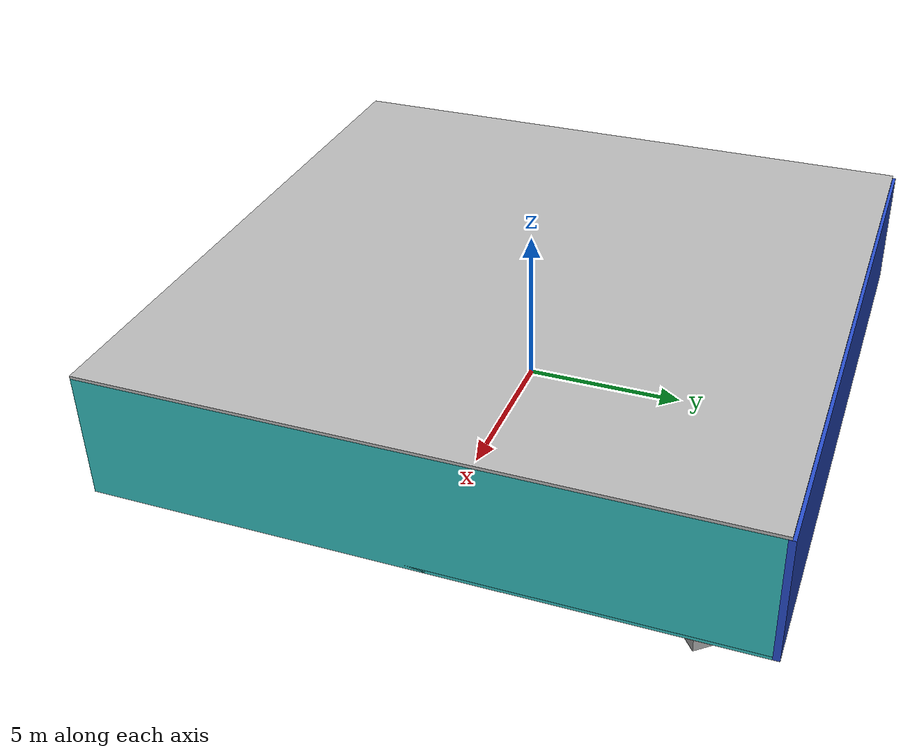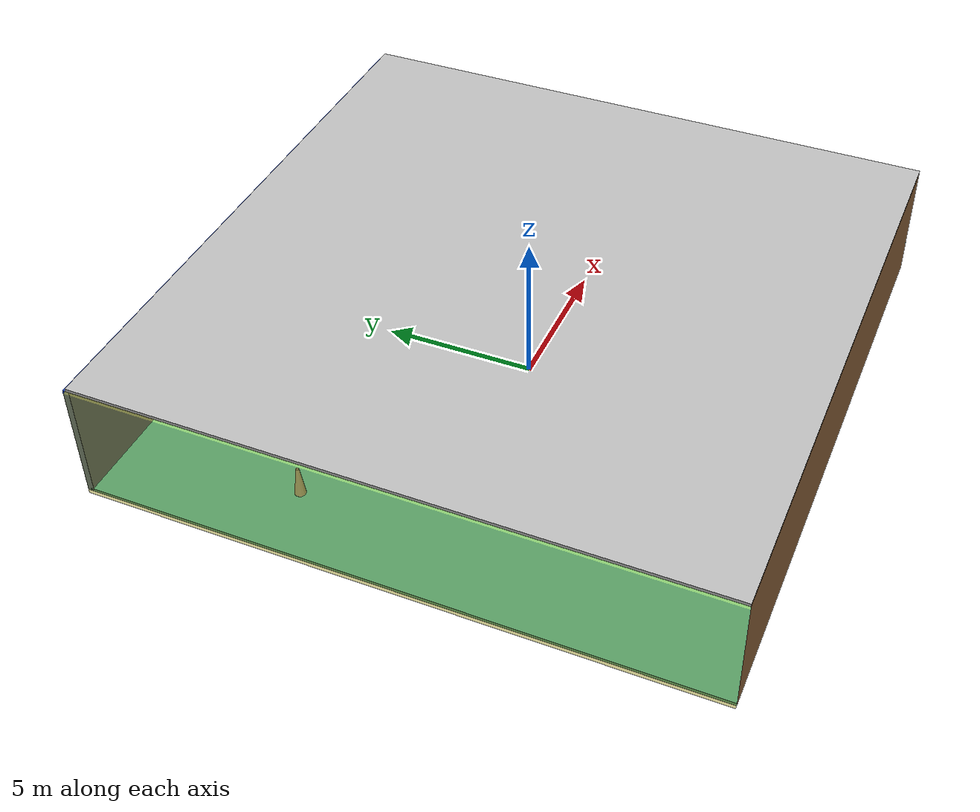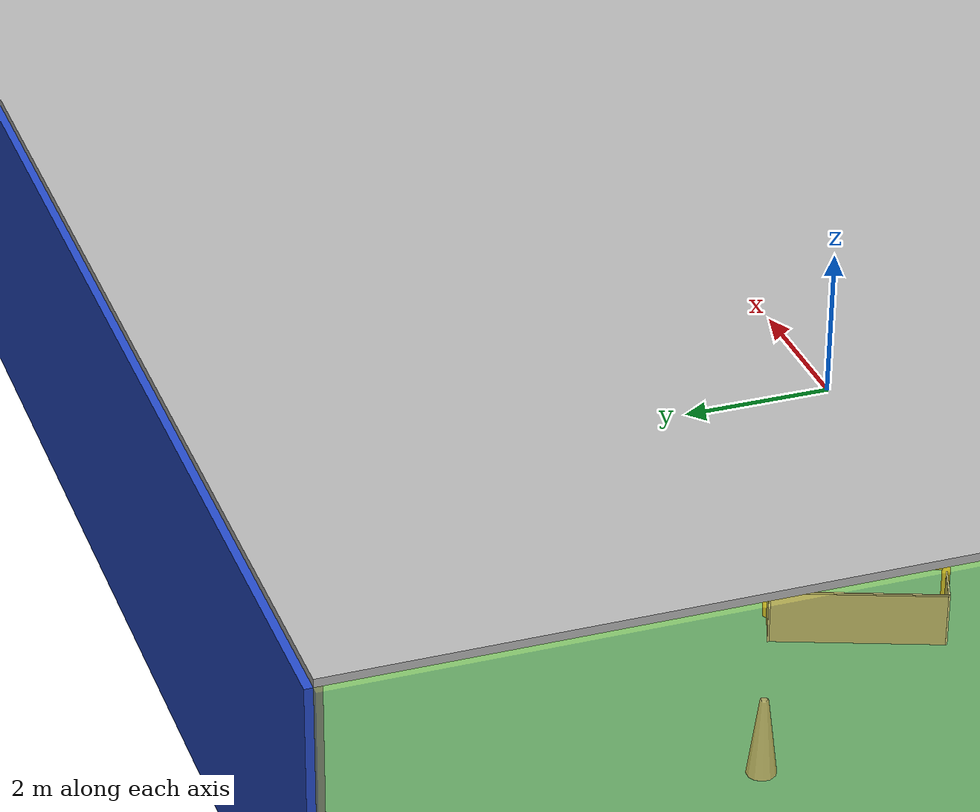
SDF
<sdf version="1.4">
 <world name="default">
  <physics type="ode">
   <max_step_size>0.001</max_step_size>
   <real_time_factor>1</real_time_factor>
   <real_time_update_rate>1000</real_time_update_rate>
   <gravity>0 0 -9.8</gravity>
  </physics>
  <scene><ambient>0.4 0.4 0.4 1</ambient><background>0.7 0.7 0.7 1</background><shadows>1</shadows></scene>
  <model name="Surrounding">
   <static>1</static>
   <link name="Ceiling">
    <collision name="Ceiling_Collision"><geometry><box><size>20 20 0.1</size></box></geometry></collision>
    <visual name="Ceiling_Visual">
     <geometry><box><size>20 20 0.1</size></box></geometry>
     <material>
      <script><uri>file://media/materials/scripts/gazebo.material</uri><name>Gazebo/JointAnchor</name></script>
     </material>
    </visual>
    <pose>0 0 4.05 0 0 0</pose>
   </link>
   <link name="Wall_South">
    <collision name="Wall_South_Collision">
     <geometry><box><size>20 0 4</size></box></geometry>
     <pose>0 0 2 0 -0 0</pose>
    </collision>
    <visual name="Wall_South_Visual">
     <pose>0 0 2 0 -0 0</pose>
     <geometry><box><size>20 0 4</size></box></geometry>
     <material>
      <script><uri>file://media/materials/scripts/gazebo.material</uri><name>Gazebo/WoodFloor</name></script>
     </material>
    </visual>
    <velocity_decay><linear>0</linear><angular>0</angular></velocity_decay>
    <pose>0 -10 0 0 -0 0</pose>
   </link>
   <link name="Wall_East">
    <collision name="Wall_21_Collision">
     <geometry><box><size>20 0 4</size></box></geometry>
     <pose>0 0 2 0 -0 0</pose>
    </collision>
    <visual name="Wall_21_Visual">
     <pose>0 0 2 0 -0 0</pose>
     <geometry><box><size>20 0 4</size></box></geometry>
     <material>
      <script><uri>file://media/materials/scripts/gazebo.material</uri><name>Gazebo/Turquoise</name></script>
     </material>
    </visual>
    <velocity_decay><linear>0</linear><angular>0</angular></velocity_decay>
    <pose>10 0 0 0 -0 1.5708</pose>
   </link>
   <link name="Wall_North">
    <collision name="Wall_22_Collision">
     <geometry><box><size>20 0.2 4</size></box></geometry>
     <pose>0 0 2 0 -0 0</pose>
    </collision>
    <visual name="Wall_22_Visual">
     <pose>0 0 2 0 -0 0</pose>
     <geometry><box><size>20 0.2 4</size></box></geometry>
     <material>
      <script><uri>file://media/materials/scripts/gazebo.material</uri><name>Gazebo/BlueLaser</name></script>
     </material>
    </visual>
    <velocity_decay><linear>0</linear><angular>0</angular></velocity_decay>
    <pose>0 10 0 0 -0 0</pose>
   </link>
   <link name="Wall_West">
    <collision name="Wall_23_Collision">
     <geometry><box><size>20 0.2 4</size></box></geometry>
     <pose>0 0 2 0 -0 0</pose>
    </collision>
    <visual name="Wall_23_Visual">
     <pose>0 0 2 0 -0 0</pose>
     <geometry><box><size>20 0.2 4</size></box></geometry>
     <material>
      <script>
       <uri>file://media/materials/scripts/gazebo.material</uri>
       <name>Gazebo/YellowTransparent</name>
      </script>
     </material>
    </visual>
    <velocity_decay><linear>0</linear><angular>0</angular></velocity_decay>
    <pose>-10 0 0 0 0 -1.5708</pose>
   </link>
   <link name="Ground_link">
    <collision name="collision">
     <pose>0 0 .05 0 -0 0</pose>
     <geometry><box><size>20 20 0.1</size></box></geometry>
    </collision>
    <visual name="visual">
     <pose>0 0 .05 0 -0 0</pose>
     <geometry><box><size>20 20 0.1</size></box></geometry>
     <material>
      <script><uri>file://media/materials/scripts/gazebo.material</uri><name>Gazebo/Turquoise</name></script>
     </material>
    </visual>
   </link>
   <static>1</static>
  </model>
  <spherical_coordinates>
   <surface_model>EARTH_WGS84</surface_model>
   <latitude_deg>0</latitude_deg>
   <longitude_deg>0</longitude_deg>
   <elevation>0</elevation>
   <heading_deg>0</heading_deg>
  </spherical_coordinates>
  <light name="lightball_0" type="diffuse">
   <diffuse>0.8 0.8 0.8 1</diffuse>
   <specular>0.2 0.2 0.2 1</specular>
   <attenuation>
    <range>100</range>
    <constant>0.7</constant>
    <linear>0.01</linear>
    <quadratic>0.001</quadratic>
   </attenuation>
   <direction>-0.5 0.1 -0.9</direction>
   <pose>-9.89489247396 -9.57001147802 3.74682001874 0 0 0</pose>
  </light>
  <light name="lightball_1" type="diffuse">
   <diffuse>0.8 0.8 0.8 1</diffuse>
   <specular>0.2 0.2 0.2 1</specular>
   <attenuation>
    <range>100</range>
    <constant>0.7</constant>
    <linear>0.01</linear>
    <quadratic>0.001</quadratic>
   </attenuation>
   <direction>-0.5 0.1 -0.9</direction>
   <pose>6.71665370158 9.10898579376 3.12159885985 0 0 0</pose>
  </light>
  <light name="lightball_2" type="diffuse">
   <diffuse>0.8 0.8 0.8 1</diffuse>
   <specular>0.2 0.2 0.2 1</specular>
   <attenuation>
    <range>100</range>
    <constant>0.7</constant>
    <linear>0.01</linear>
    <quadratic>0.001</quadratic>
   </attenuation>
   <direction>-0.5 0.1 -0.9</direction>
   <pose>-2.58801350193 -2.46174979539 1.80796616074 0 0 0</pose>
  </light>
  <light name="lightball_3" type="diffuse">
   <diffuse>0.8 0.8 0.8 1</diffuse>
   <specular>0.2 0.2 0.2 1</specular>
   <attenuation>
    <range>100</range>
    <constant>0.7</constant>
    <linear>0.01</linear>
    <quadratic>0.001</quadratic>
   </attenuation>
   <direction>-0.5 0.1 -0.9</direction>
   <pose>3.60181640462 7.9239709961 3.35738378183 0 0 0</pose>
  </light>
  <light name="lightball_4" type="diffuse">
   <diffuse>0.8 0.8 0.8 1</diffuse>
   <specular>0.2 0.2 0.2 1</specular>
   <attenuation>
    <range>100</range>
    <constant>0.7</constant>
    <linear>0.01</linear>
    <quadratic>0.001</quadratic>
   </attenuation>
   <direction>-0.5 0.1 -0.9</direction>
   <pose>2.31477918002 -7.95405689315 1.77865043157 0 0 0</pose>
  </light>
  <light name="lightball_5" type="diffuse">
   <diffuse>0.8 0.8 0.8 1</diffuse>
   <specular>0.2 0.2 0.2 1</specular>
   <attenuation>
    <range>100</range>
    <constant>0.7</constant>
    <linear>0.01</linear>
    <quadratic>0.001</quadratic>
   </attenuation>
   <direction>-0.5 0.1 -0.9</direction>
   <pose>-8.12923983334 6.71661106297 1.65068159162 0 0 0</pose>
  </light>
  <light name="lightball_6" type="diffuse">
   <diffuse>0.8 0.8 0.8 1</diffuse>
   <specular>0.2 0.2 0.2 1</specular>
   <attenuation>
    <range>100</range>
    <constant>0.7</constant>
    <linear>0.01</linear>
    <quadratic>0.001</quadratic>
   </attenuation>
   <direction>-0.5 0.1 -0.9</direction>
   <pose>6.16127517593 -4.19621221365 2.39998599952 0 0 0</pose>
  </light>
  <light name="lightball_7" type="diffuse">
   <diffuse>0.8 0.8 0.8 1</diffuse>
   <specular>0.2 0.2 0.2 1</specular>
   <attenuation>
    <range>100</range>
    <constant>0.7</constant>
    <linear>0.01</linear>
    <quadratic>0.001</quadratic>
   </attenuation>
   <direction>-0.5 0.1 -0.9</direction>
   <pose>6.41219519517 2.98122774922 0.569596116938 0 0 0</pose>
  </light>
  <light name="lightball_8" type="diffuse">
   <diffuse>0.8 0.8 0.8 1</diffuse>
   <specular>0.2 0.2 0.2 1</specular>
   <attenuation>
    <range>100</range>
    <constant>0.7</constant>
    <linear>0.01</linear>
    <quadratic>0.001</quadratic>
   </attenuation>
   <direction>-0.5 0.1 -0.9</direction>
   <pose>-5.25576053731 9.70613232642 1.47463423598 0 0 0</pose>
  </light>
  <light name="lightball_9" type="diffuse">
   <diffuse>0.8 0.8 0.8 1</diffuse>
   <specular>0.2 0.2 0.2 1</specular>
   <attenuation>
    <range>100</range>
    <constant>0.7</constant>
    <linear>0.01</linear>
    <quadratic>0.001</quadratic>
   </attenuation>
   <direction>-0.5 0.1 -0.9</direction>
   <pose>9.03130628853 3.14850116356 2.33244282316 0 0 0</pose>
  </light>
  <light name="lightball_10" type="diffuse">
   <diffuse>0.8 0.8 0.8 1</diffuse>
   <specular>0.2 0.2 0.2 1</specular>
   <attenuation>
    <range>100</range>
    <constant>0.7</constant>
    <linear>0.01</linear>
    <quadratic>0.001</quadratic>
   </attenuation>
   <direction>-0.5 0.1 -0.9</direction>
   <pose>-2.39056971357 -9.05860910171 2.3065569255 0 0 0</pose>
  </light>
  <light name="lightball_11" type="diffuse">
   <diffuse>0.8 0.8 0.8 1</diffuse>
   <specular>0.2 0.2 0.2 1</specular>
   <attenuation>
    <range>100</range>
    <constant>0.7</constant>
    <linear>0.01</linear>
    <quadratic>0.001</quadratic>
   </attenuation>
   <direction>-0.5 0.1 -0.9</direction>
   <pose>-3.79991073413 5.97742387804 0.999785124759 0 0 0</pose>
  </light>
  <light name="lightball_12" type="diffuse">
   <diffuse>0.8 0.8 0.8 1</diffuse>
   <specular>0.2 0.2 0.2 1</specular>
   <attenuation>
    <range>100</range>
    <constant>0.7</constant>
    <linear>0.01</linear>
    <quadratic>0.001</quadratic>
   </attenuation>
   <direction>-0.5 0.1 -0.9</direction>
   <pose>-8.43512675228 5.79241064497 1.14369160296 0 0 0</pose>
  </light>
  <light name="lightball_13" type="diffuse">
   <diffuse>0.8 0.8 0.8 1</diffuse>
   <specular>0.2 0.2 0.2 1</specular>
   <attenuation>
    <range>100</range>
    <constant>0.7</constant>
    <linear>0.01</linear>
    <quadratic>0.001</quadratic>
   </attenuation>
   <direction>-0.5 0.1 -0.9</direction>
   <pose>-9.2695003101 -5.54697563098 1.54755754201 0 0 0</pose>
  </light>
  <include>
   <uri>model://construction_cone</uri>
   <pose>-7.76455554838 4.13720823862 0 0 0 1.81888072869</pose>
  </include>
  <include>
   <uri>model://robocup_3Dsim_goal</uri>
   <pose>-5.19366355555 1.8780748355 0 0 0 2.78146078712</pose>
  </include>
  <include>
   <uri>model://robocup_3Dsim_goal</uri>
   <pose>-1.3127709795 6.73404755821 0 0 0 3.05253070715</pose>
  </include>
  <include><uri>model://table</uri><pose>4.04904211671 5.05882585876 0 0 0 1.24114751641</pose></include>
  <include><uri>model://cabinet</uri><pose>4.9394065798 8.1363502852 0 0 0 0.669594545743</pose></include>
  <include>
   <uri>model://robocup_3Dsim_goal</uri>
   <pose>7.93398672257 -4.10176367972 0 0 0 1.5642686537</pose>
  </include>
  <include>
   <uri>model://robocup_3Dsim_goal</uri>
   <pose>7.02075772144 1.92124328154 0 0 0 1.06003475351</pose>
  </include>
  <include>
   <uri>model://textured_shapes</uri>
   <pose>8.03218631203 6.97902825631 0 0 0 2.25646811949</pose>
  </include>
 </world>
</sdf>

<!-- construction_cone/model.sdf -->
<sdf version="1.5">
  <model name="Construction Cone">
    <link name="link">
      <collision name="collision">
        <geometry>
          <mesh>
            <scale>10 10 10</scale>
            <uri>file://isr-testbed/construction_cone/meshes/construction_cone.dae</uri>
          </mesh>
        </geometry>
      </collision>
      <visual name="visual">
        <geometry>
          <mesh>
            <scale>10 10 10</scale>
            <uri>file://isr-testbed/construction_cone/meshes/construction_cone.dae</uri>
          </mesh>
        </geometry>
      </visual>
    </link>
  </model>
</sdf>

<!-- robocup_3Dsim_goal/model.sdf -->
<sdf version="1.5">
  <model name="robocup_3d_goal">
    <static>true</static>
    <link name="left_post">
      <pose>0 1.05 0.45 0 0 0</pose>
      <collision name="collision">
        <geometry>
          <cylinder>
            <radius>0.05</radius>
            <length>0.9</length>
          </cylinder>
        </geometry>
      </collision>
      <visual name="visual">
        <geometry>
          <cylinder>
            <radius>0.05</radius>
            <length>0.9</length>
          </cylinder>
        </geometry>
        <material>
          <script>
            <uri>file://media/materials/scripts/gazebo.material</uri>
            <name>Gazebo/ZincYellow</name>
          </script>
        </material>
      </visual>
    </link>
    <link name="left_support_horiz_lower">
      <pose>0.30 1.05 0.01 0 0 0</pose>
      <collision name="collision">
        <geometry>
          <box>
            <size>0.50 0.02 0.02</size>
          </box>
        </geometry>
      </collision>
      <visual name="visual">
        <geometry>
          <box>
            <size>0.50 0.02 0.02</size>
          </box>
        </geometry>
        <material>
          <script>
            <uri>file://media/materials/scripts/gazebo.material</uri>
            <name>Gazebo/White</name>
          </script>
        </material>
      </visual>
    </link>
    <link name="left_support_horiz_upper">
      <pose>0.30 1.05 0.79 0 0 0</pose>
      <collision name="collision">
        <geometry>
          <box>
            <size>0.50 0.02 0.02</size>
          </box>
        </geometry>
      </collision>
      <visual name="visual">
        <geometry>
          <box>
            <size>0.50 0.02 0.02</size>
          </box>
        </geometry>
        <material>
          <script>
            <uri>file://media/materials/scripts/gazebo.material</uri>
            <name>Gazebo/White</name>
          </script>
        </material>
      </visual>
    </link>
    <link name="left_support_vertical">
      <pose>0.56 1.05 0.4 0 1.5708 0</pose>
      <collision name="collision">
        <geometry>
          <box>
            <size>0.80 0.02 0.02</size>
          </box>
        </geometry>
      </collision>
      <visual name="visual">
        <geometry>
          <box>
            <size>0.80 0.02 0.02</size>
          </box>
        </geometry>
        <material>
          <script>
            <uri>file://media/materials/scripts/gazebo.material</uri>
            <name>Gazebo/White</name>
          </script>
        </material>
      </visual>
    </link>
    <link name="right_support_horiz_lower">
      <pose>0.30 -1.05 0.01 0 0 0</pose>
      <collision name="collision">
        <geometry>
          <box>
            <size>0.50 0.02 0.02</size>
          </box>
        </geometry>
      </collision>
      <visual name="visual">
        <geometry>
          <box>
            <size>0.50 0.02 0.02</size>
          </box>
        </geometry>
        <material>
          <script>
            <uri>file://media/materials/scripts/gazebo.material</uri>
            <name>Gazebo/White</name>
          </script>
        </material>
      </visual>
    </link>
    <link name="right_support_horiz_upper">
      <pose>0.30 -1.05 0.79 0 0 0</pose>
      <collision name="collision">
        <geometry>
          <box>
            <size>0.50 0.02 0.02</size>
          </box>
        </geometry>
      </collision>
      <visual name="visual">
        <geometry>
          <box>
            <size>0.50 0.02 0.02</size>
          </box>
        </geometry>
        <material>
          <script>
            <uri>file://media/materials/scripts/gazebo.material</uri>
            <name>Gazebo/White</name>
          </script>
        </material>
      </visual>
    </link>
    <link name="right_support_vertical">
      <pose>0.56 -1.05 0.4 0 1.5708 0</pose>
      <collision name="collision">
        <geometry>
          <box>
            <size>0.80 0.02 0.02</size>
          </box>
        </geometry>
      </collision>
      <visual name="visual">
        <geometry>
          <box>
            <size>0.80 0.02 0.02</size>
          </box>
        </geometry>
        <material>
          <script>
            <uri>file://media/materials/scripts/gazebo.material</uri>
            <name>Gazebo/White</name>
          </script>
        </material>
      </visual>
    </link>
    <link name="center_support_horiz_lower">
      <pose>0.56 0 0.01 0 1.5708 0</pose>
      <collision name="collision">
        <geometry>
          <box>
            <size>0.02 2.08 0.02</size>
          </box>
        </geometry>
      </collision>
      <visual name="visual">
        <geometry>
          <box>
            <size>0.02 2.08 0.02</size>
          </box>
        </geometry>
        <material>
          <script>
            <uri>file://media/materials/scripts/gazebo.material</uri>
            <name>Gazebo/White</name>
          </script>
        </material>
      </visual>
    </link>
    <link name="center_support_horiz_upper">
      <pose>0.56 0 0.79 0 1.5708 0</pose>
      <collision name="collision">
        <geometry>
          <box>
            <size>0.02 2.08 0.02</size>
          </box>
        </geometry>
      </collision>
      <visual name="visual">
        <geometry>
          <box>
            <size>0.02 2.08 0.02</size>
          </box>
        </geometry>
        <material>
          <script>
            <uri>file://media/materials/scripts/gazebo.material</uri>
            <name>Gazebo/White</name>
          </script>
        </material>
      </visual>
    </link>
    <link name="right_post">
      <pose>0 -1.05 0.45 0 0 0</pose>
      <collision name="collision">
        <geometry>
          <cylinder>
            <radius>0.05</radius>
            <length>0.9</length>
          </cylinder>
        </geometry>
      </collision>
      <visual name="visual">
        <geometry>
          <cylinder>
            <radius>0.05</radius>
            <length>0.9</length>
          </cylinder>
        </geometry>
        <material>
          <script>
            <uri>file://media/materials/scripts/gazebo.material</uri>
            <name>Gazebo/ZincYellow</name>
          </script>
        </material>
      </visual>
    </link>
    <link name="crossbar">
      <pose>0 0 0.85 1.57 1.57 0</pose>
      <collision name="collision">
        <geometry>
          <cylinder>
            <radius>0.05</radius>
            <length>2.0</length>
          </cylinder>
        </geometry>
      </collision>
      <visual name="visual">
        <geometry>
          <cylinder>
            <radius>0.05</radius>
            <length>2.0</length>
          </cylinder>
        </geometry>
        <material>
          <script>
            <uri>file://media/materials/scripts/gazebo.material</uri>
            <name>Gazebo/ZincYellow</name>
          </script>
        </material>
      </visual>
    </link>
    <link name="center_net">
      <pose>0.56 0 0.40 0 0 0</pose>
      <collision name="collision">
        <geometry>
          <box>
            <size>0.01 2.1 0.80</size>
          </box>
        </geometry>
      </collision>
      <visual name="visual">
        <geometry>
          <box>
            <size>0.01 2.1 0.80</size>
          </box>
        </geometry>
        <material>
          <script>
            <uri>model://../model_source/models/robocup09_spl_field/materials/scripts/</uri>
            <uri>model://../model_source/models/robocup09_spl_field/materials/textures/</uri>
            <name>RoboCup/Net</name>
          </script>
        </material>
      </visual>
    </link>
    <link name="left_net">
      <pose>0.30 1.05 0.40 0 0 0</pose>
      <collision name="collision">
        <geometry>
          <box>
            <size>0.50 0.01 0.76</size>
          </box>
        </geometry>
      </collision>
      <visual name="visual">
        <geometry>
          <box>
            <size>0.50 0.01 0.76</size>
          </box>
        </geometry>
        <material>
          <script>
            <uri>model://../model_source/models/robocup09_spl_field/materials/scripts/</uri>
            <uri>model://../model_source/models/robocup09_spl_field/materials/textures/</uri>
            <name>RoboCup/Net</name>
          </script>
        </material>
      </visual>
    </link>
    <link name="right_net">
      <pose>0.30 -1.05 0.40 0 0 0</pose>
      <collision name="collision">
        <geometry>
          <box>
            <size>0.50 0.01 0.76</size>
          </box>
        </geometry>
      </collision>
      <visual name="visual">
        <geometry>
          <box>
            <size>0.50 0.01 0.76</size>
          </box>
        </geometry>
        <material>
          <script>
            <uri>model://../model_source/models/robocup09_spl_field/materials/scripts/</uri>
            <uri>model://../model_source/models/robocup09_spl_field/materials/textures/</uri>
            <name>RoboCup/Net</name>
          </script>
        </material>
      </visual>
    </link>
  </model>
</sdf>

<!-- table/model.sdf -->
<sdf version="1.5">
  <model name="table">
    <static>true</static>
    <link name="link">
      <collision name="surface">
        <pose>0 0 1.0 0 0 0</pose>
        <geometry>
          <box>
            <size>1.5 0.8 0.03</size>
          </box>
        </geometry>
        <surface>
          <friction>
            <ode>
              <mu>0.6</mu>
              <mu2>0.6</mu2>
            </ode>
          </friction>
        </surface>
      </collision>
      <visual name="visual1">
        <pose>0 0 1.0 0 0 0</pose>
        <geometry>
          <box>
            <size>1.5 0.8 0.03</size>
          </box>
        </geometry>
        <material>
          <script>
            <uri>model://media/materials/scripts/gazebo.material</uri>
            <name>Gazebo/Wood</name>
          </script>
        </material>
      </visual>
      <collision name="front_left_leg">
        <pose>0.68 0.38 0.5 0 0 0</pose>
        <geometry>
          <cylinder>
            <radius>0.02</radius>
            <length>1.0</length>
          </cylinder>
        </geometry>
      </collision>
      <visual name="front_left_leg">
        <pose>0.68 0.38 0.5 0 0 0</pose>
        <geometry>
          <cylinder>
            <radius>0.02</radius>
            <length>1.0</length>
          </cylinder>
        </geometry>
        <material>
          <script>
            <uri>model://media/materials/scripts/gazebo.material</uri>
            <name>Gazebo/Grey</name>
          </script>
        </material>
      </visual>
      <collision name="front_right_leg">
        <pose>0.68 -0.38 0.5 0 0 0</pose>
        <geometry>
          <cylinder>
            <radius>0.02</radius>
            <length>1.0</length>
          </cylinder>
        </geometry>
      </collision>
      <visual name="front_right_leg">
        <pose>0.68 -0.38 0.5 0 0 0</pose>
        <geometry>
          <cylinder>
            <radius>0.02</radius>
            <length>1.0</length>
          </cylinder>
        </geometry>
        <material>
          <script>
            <uri>model://media/materials/scripts/gazebo.material</uri>
            <name>Gazebo/Grey</name>
          </script>
        </material>
      </visual>
      <collision name="back_right_leg">
        <pose>-0.68 -0.38 0.5 0 0 0</pose>
        <geometry>
          <cylinder>
            <radius>0.02</radius>
            <length>1.0</length>
          </cylinder>
        </geometry>
      </collision>
      <visual name="back_right_leg">
        <pose>-0.68 -0.38 0.5 0 0 0</pose>
        <geometry>
          <cylinder>
            <radius>0.02</radius>
            <length>1.0</length>
          </cylinder>
        </geometry>
        <material>
          <script>
            <uri>model://media/materials/scripts/gazebo.material</uri>
            <name>Gazebo/Grey</name>
          </script>
        </material>
      </visual>
      <collision name="back_left_leg">
        <pose>-0.68 0.38 0.5 0 0 0</pose>
        <geometry>
          <cylinder>
            <radius>0.02</radius>
            <length>1.0</length>
          </cylinder>
        </geometry>
      </collision>
      <visual name="back_left_leg">
        <pose>-0.68 0.38 0.5 0 0 0</pose>
        <geometry>
          <cylinder>
            <radius>0.02</radius>
            <length>1.0</length>
          </cylinder>
        </geometry>
        <material>
          <script>
            <uri>model://media/materials/scripts/gazebo.material</uri>
            <name>Gazebo/Grey</name>
          </script>
        </material>
      </visual>
    </link>
  </model>
</sdf>

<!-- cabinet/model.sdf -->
<sdf version="1.5">
  <model name="cabinet">
    <static>true</static>
    <link name="cabinet_bottom_plate">
      <inertial>
        <pose>0 0 -1 0 0 0</pose>
        <inertia>
          <ixx>2.050000</ixx>
          <ixy>0</ixy>
          <ixz>0</ixz>
          <iyy>2.050000</iyy>
          <iyz>0</iyz>
          <izz>2.050000</izz>
        </inertia>
        <mass>25.000000</mass>
      </inertial>
      <collision name="cabinet_bottom_plate_geom">
        <pose>0 0 0.010000 0 0 0</pose>
        <geometry>
          <box>
            <size>0.450000 0.450000 0.020000</size>
          </box>
        </geometry>
      </collision>
      <visual name="cabinet_bottom_plate_geom_visual">
        <pose>0 0 0.010000 0 0 0</pose>
        <geometry>
          <box>
            <size>0.450000 0.450000 0.020000</size>
          </box>
        </geometry>
        <material>
          <script>
            <uri>model://media/materials/scripts/gazebo.material</uri>
            <name>Gazebo/Wood</name>
          </script>
        </material>
      </visual>
      <collision name="cabinet_bottom_plate_geom_cabinet_back_plate">
        <pose>0.235000 0 0.510000 0 0 0</pose>
        <geometry>
          <box>
            <size>0.020000 0.450000 1.020000</size>
          </box>
        </geometry>
      </collision>
      <visual name="cabinet_bottom_plate_geom_cabinet_back_plate_visual">
        <pose>0.235000 0 0.510000 0 0 0</pose>
        <geometry>
          <box>
            <size>0.020000 0.450000 1.020000</size>
          </box>
        </geometry>
        <material>
          <script>
            <uri>model://media/materials/scripts/gazebo.material</uri>
            <name>Gazebo/Wood</name>
          </script>
        </material>
      </visual>
      <collision name="cabinet_bottom_plate_geom_cabinet_left_plate">
        <pose>0 0.235000 0.510000 0 0 0</pose>
        <geometry>
          <box>
            <size>0.450000 0.020000 1.020000</size>
          </box>
        </geometry>
      </collision>
      <visual name="cabinet_bottom_plate_geom_cabinet_left_plate_visual">
        <pose>0 0.235000 0.510000 0 0 0</pose>
        <geometry>
          <box>
            <size>0.450000 0.020000 1.020000</size>
          </box>
        </geometry>
        <material>
          <script>
            <uri>model://media/materials/scripts/gazebo.material</uri>
            <name>Gazebo/Wood</name>
          </script>
        </material>
      </visual>
      <collision name="cabinet_bottom_plate_geom_cabinet_middle_plate">
        <pose>0 0 0.510000 0 0 0</pose>
        <geometry>
          <box>
            <size>0.450000 0.450000 0.020000</size>
          </box>
        </geometry>
      </collision>
      <visual name="cabinet_bottom_plate_geom_cabinet_middle_plate_visual">
        <pose>0 0 0.510000 0 0 0</pose>
        <geometry>
          <box>
            <size>0.450000 0.450000 0.020000</size>
          </box>
        </geometry>
        <material>
          <script>
            <uri>model://media/materials/scripts/gazebo.material</uri>
            <name>Gazebo/Wood</name>
          </script>
        </material>
      </visual>
      <collision name="cabinet_bottom_plate_geom_cabinet_right_plate">
        <pose>0 -0.235000 0.510000 0 0 0</pose>
        <geometry>
          <box>
            <size>0.450000 0.020000 1.020000</size>
          </box>
        </geometry>
      </collision>
      <visual name="cabinet_bottom_plate_geom_cabinet_right_plate_visual">
        <pose>0 -0.235000 0.510000 0 0 0</pose>
        <geometry>
          <box>
            <size>0.450000 0.020000 1.020000</size>
          </box>
        </geometry>
        <material>
          <script>
            <uri>model://media/materials/scripts/gazebo.material</uri>
            <name>Gazebo/Wood</name>
          </script>
        </material>
      </visual>
      <collision name="cabinet_bottom_plate_geom_cabinet_top_plate">
        <pose>0 0 1.010000 0 0 0</pose>
        <geometry>
          <box>
            <size>0.450000 0.450000 0.020000</size>
          </box>
        </geometry>
      </collision>
      <visual name="cabinet_bottom_plate_geom_cabinet_top_plate_visual">
        <pose>0 0 1.010000 0 0 0</pose>
        <geometry>
          <box>
            <size>0.450000 0.450000 0.020000</size>
          </box>
        </geometry>
        <material>
          <script>
            <uri>model://media/materials/scripts/gazebo.material</uri>
            <name>Gazebo/Wood</name>
          </script>
        </material>
      </visual>
    </link>
  </model>
</sdf>

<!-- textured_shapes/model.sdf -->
<sdf version="1.6">
  <model name="textured_shapes">
    <pose>0 0 0.5 0 0 0</pose>
    <link name="box">
      <pose>0 -1.5 0 0 0 0</pose>
      <collision name="collision">
        <geometry>
          <box>
            <size>1 1 1</size>
          </box>
        </geometry>
      </collision>
      <visual name="visual">
        <geometry>
          <box>
            <size>1 1 1</size>
          </box>
        </geometry>
        <material>
          <script>
            <uri>model://../model_source/models/textured_shapes/materials/scripts</uri>
            <uri>model://../model_source/models/textured_shapes/materials/textures</uri>
            <name>TexturedShape/Squares</name>
          </script>
        </material>
      </visual>
    </link>
    <link name="sphere">
      <collision name="collision">
        <geometry>
          <sphere>
            <radius>0.5</radius>
          </sphere>
        </geometry>
      </collision>
      <visual name="visual">
        <geometry>
          <sphere>
            <radius>0.5</radius>
          </sphere>
        </geometry>
        <material>
          <script>
            <uri>model://../model_source/models/textured_shapes/materials/scripts</uri>
            <uri>model://../model_source/models/textured_shapes/materials/textures</uri>
            <name>TexturedShape/Squares</name>
          </script>
        </material>
      </visual>
    </link>
    <link name="cylinder">
      <pose>0 1.5 0 0 0 0</pose>
      <collision name="collision">
        <geometry>
          <cylinder>
            <radius>0.5</radius>
            <length>1</length>
          </cylinder>
        </geometry>
      </collision>
      <visual name="visual">
        <geometry>
          <cylinder>
            <radius>0.5</radius>
            <length>1</length>
          </cylinder>
        </geometry>
        <material>
          <script>
            <uri>model://../model_source/models/textured_shapes/materials/scripts</uri>
            <uri>model://../model_source/models/textured_shapes/materials/textures</uri>
            <name>TexturedShape/Squares</name>
          </script>
        </material>
      </visual>
    </link>
  </model>
</sdf>
